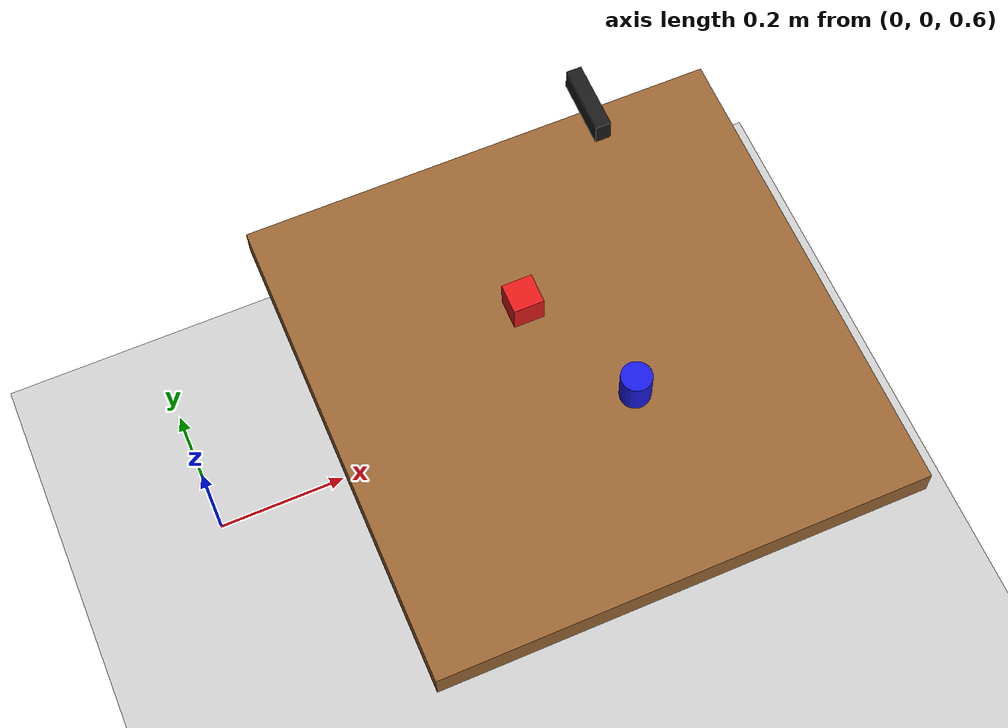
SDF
<?xml version="1.0"?>
<sdf version="1.6">
  <world name="pick_place_world">

    <!-- Lighting -->
    <include>
      <uri>model://sun</uri>
    </include>

    <!-- Ground plane -->
    <include>
      <uri>model://ground_plane</uri>
    </include>

    <!-- Table -->
    <model name="table">
      <static>true</static>
      <pose>0.6 0 0 0 0 0</pose>
      <link name="table_top">
        <visual name="visual">
          <geometry>
            <box>
              <size>0.8 0.8 0.05</size>
            </box>
          </geometry>
          <material>
            <ambient>0.6 0.4 0.2 1</ambient>
          </material>
        </visual>
        <collision name="collision">
          <geometry>
            <box>
              <size>0.8 0.8 0.05</size>
            </box>
          </geometry>
        </collision>
        <pose>0 0 0.7 0 0 0</pose>
      </link>
    </model>

    <!-- Object 1: Red box -->
    <model name="object_1">
      <pose>0.55 0.1 0.755 0 0 0</pose>
      <link name="link">
        <visual name="visual">
          <geometry>
            <box><size>0.05 0.05 0.05</size></box>
          </geometry>
          <material><ambient>0.9 0.1 0.1 1</ambient></material>
        </visual>
        <collision name="collision">
          <geometry>
            <box><size>0.05 0.05 0.05</size></box>
          </geometry>
        </collision>
        <inertial>
          <mass>0.1</mass>
          <inertia><ixx>0.0001</ixx><iyy>0.0001</iyy><izz>0.0001</izz></inertia>
        </inertial>
      </link>
    </model>

    <!-- Object 2: Blue cylinder -->
    <model name="object_2">
      <pose>0.65 -0.1 0.755 0 0 0</pose>
      <link name="link">
        <visual name="visual">
          <geometry>
            <cylinder><radius>0.025</radius><length>0.06</length></cylinder>
          </geometry>
          <material><ambient>0.1 0.1 0.9 1</ambient></material>
        </visual>
        <collision name="collision">
          <geometry>
            <cylinder><radius>0.025</radius><length>0.06</length></cylinder>
          </geometry>
        </collision>
        <inertial>
          <mass>0.1</mass>
          <inertia><ixx>0.0001</ixx><iyy>0.0001</iyy><izz>0.0001</izz></inertia>
        </inertial>
      </link>
    </model>

    <!-- Depth camera (Intel RealSense-style, fixed above workspace) -->
    <model name="depth_camera">
      <static>true</static>
      <pose>0.6 0 1.4 0 1.5708 0</pose>
      <link name="link">
        <visual name="visual">
          <geometry>
            <box><size>0.03 0.09 0.02</size></box>
          </geometry>
          <material><ambient>0.1 0.1 0.1 1</ambient></material>
        </visual>
        <sensor name="depth_camera" type="depth">
          <update_rate>10</update_rate>
          <camera>
            <horizontal_fov>1.047</horizontal_fov>
            <image>
              <width>640</width>
              <height>480</height>
              <format>R_FLOAT32</format>
            </image>
            <clip>
              <near>0.1</near>
              <far>3.0</far>
            </clip>
          </camera>
          <plugin name="depth_camera_plugin" filename="libgazebo_ros_camera.so">
            <ros>
              <remapping>~/points:=/camera/depth/points</remapping>
              <remapping>~/image_raw:=/camera/depth/image_raw</remapping>
              <remapping>~/camera_info:=/camera/depth/camera_info</remapping>
            </ros>
            <frame_name>depth_camera_link</frame_name>
            <min_depth>0.1</min_depth>
            <max_depth>3.0</max_depth>
          </plugin>
        </sensor>
      </link>
    </model>

  </world>
</sdf>
